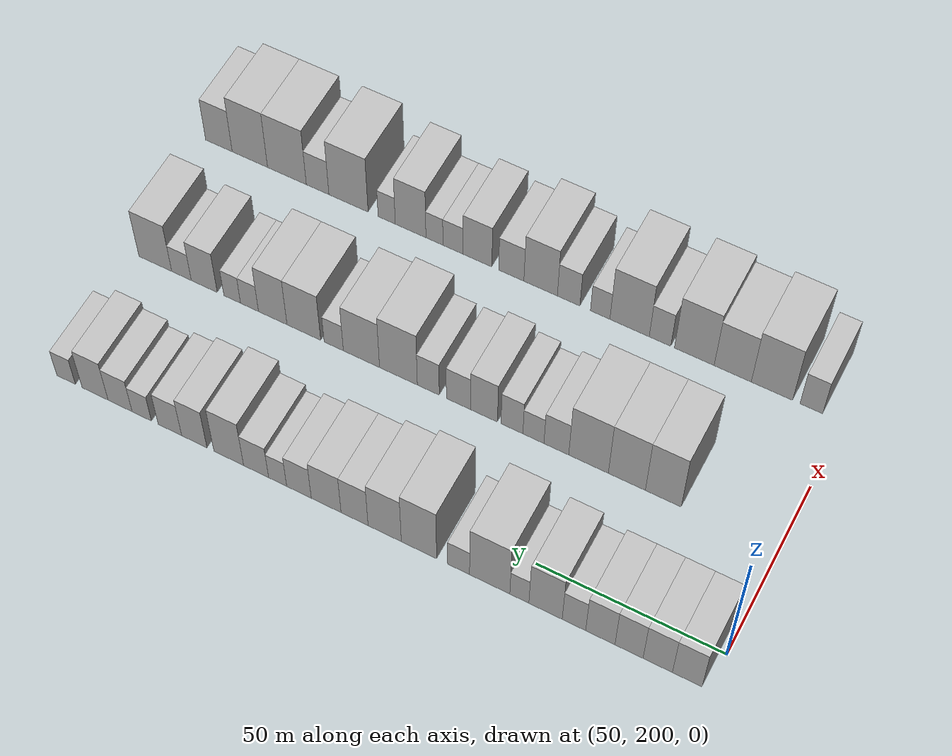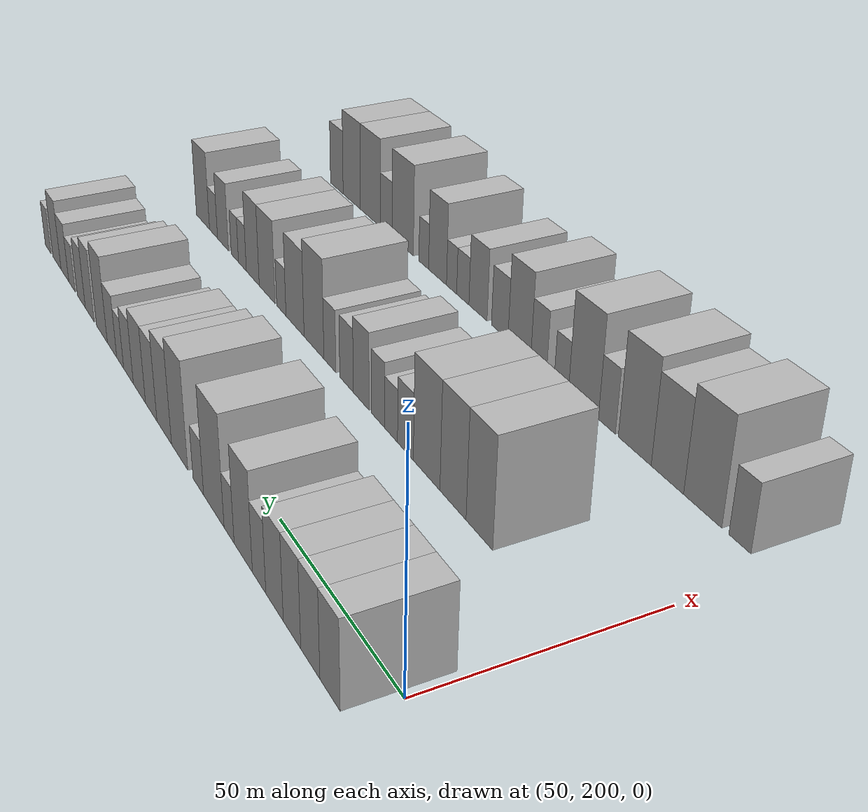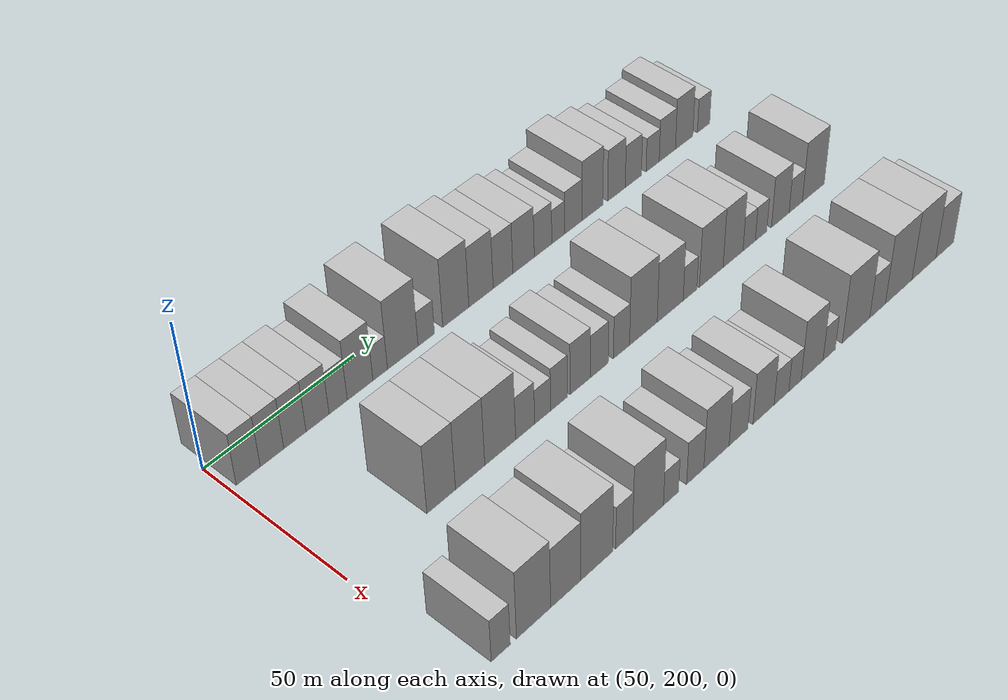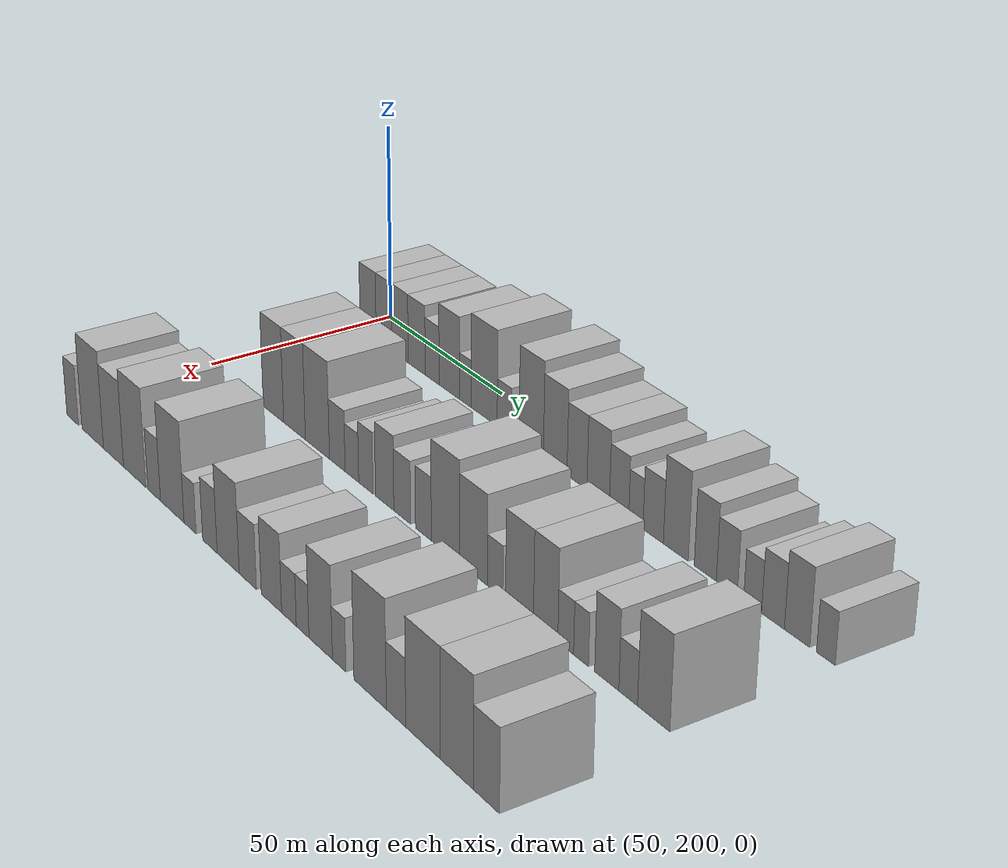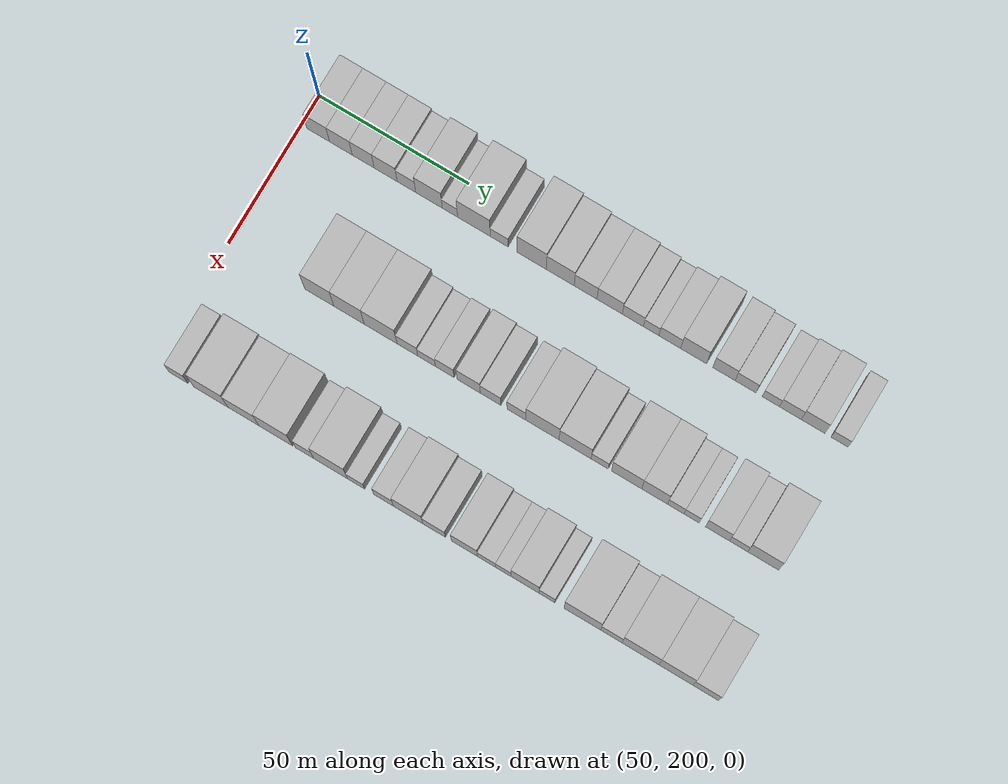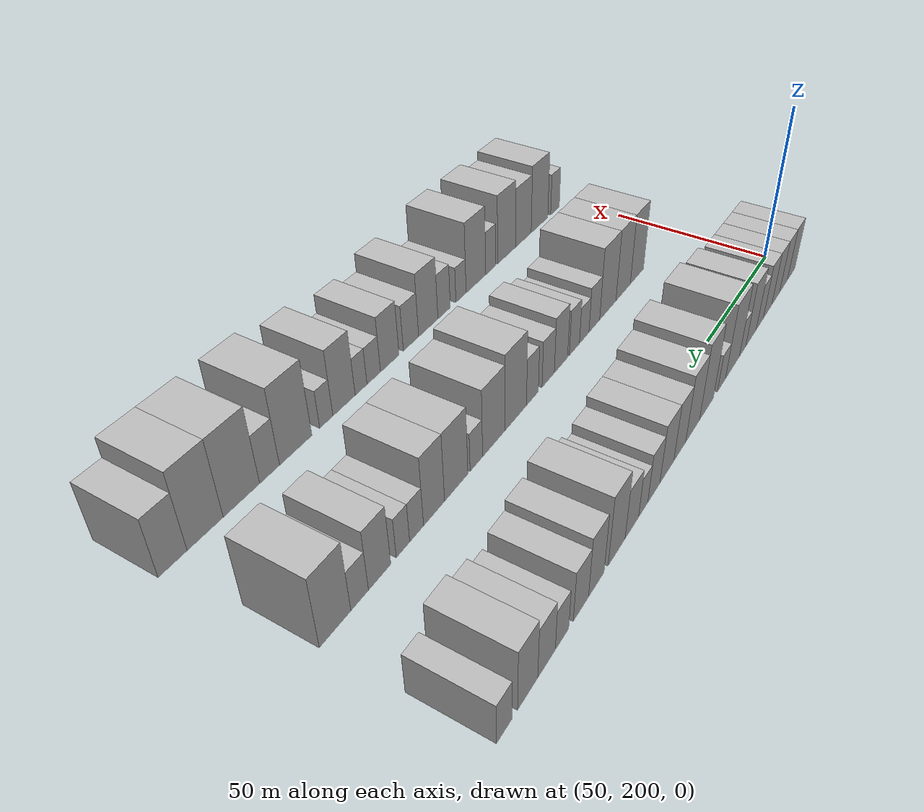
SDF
<sdf version="1.6">
 <world name="default">
  <model name="building_60">
   <static>1</static>
   <pose>50.0000 205.6578 0 0.000000 0.000000 0.000000</pose>
   <link name="link">
    <pose>0 0 9.00 0 0 0</pose>
    <collision name="collision"><geometry><box><size>20.0000 7.6293 18.0000</size></box></geometry></collision>
    <visual name="visual">
     <cast_shadows>0</cast_shadows>
     <geometry><box><size>20.0000 7.6293 18.0000</size></box></geometry>
     <material>
      <script>
       <uri>model://HANNAS_wall/materials/scripts</uri>
       <uri>model://HANNAS_wall/materials/textures</uri>
       <name>vrc/HANNAS_wall</name>
      </script>
     </material>
    </visual>
   </link>
  </model>
  <model name="building_61">
   <static>1</static>
   <pose>50.0000 213.2637 0 0.000000 0.000000 0.000000</pose>
   <link name="link">
    <pose>0 0 9.00 0 0 0</pose>
    <collision name="collision"><geometry><box><size>20.0000 7.5824 18.0000</size></box></geometry></collision>
    <visual name="visual">
     <cast_shadows>0</cast_shadows>
     <geometry><box><size>20.0000 7.5824 18.0000</size></box></geometry>
     <material>
      <script>
       <uri>model://HANNAS_wall/materials/scripts</uri>
       <uri>model://HANNAS_wall/materials/textures</uri>
       <name>vrc/HANNAS_wall</name>
      </script>
     </material>
    </visual>
   </link>
  </model>
  <model name="building_62">
   <static>1</static>
   <pose>50.0000 220.7071 0 0.000000 0.000000 0.000000</pose>
   <link name="link">
    <pose>0 0 9.00 0 0 0</pose>
    <collision name="collision"><geometry><box><size>20.0000 7.3046 18.0000</size></box></geometry></collision>
    <visual name="visual">
     <cast_shadows>0</cast_shadows>
     <geometry><box><size>20.0000 7.3046 18.0000</size></box></geometry>
     <material>
      <script>
       <uri>model://HANNAS_wall/materials/scripts</uri>
       <uri>model://HANNAS_wall/materials/textures</uri>
       <name>vrc/HANNAS_wall</name>
      </script>
     </material>
    </visual>
   </link>
  </model>
  <model name="building_63">
   <static>1</static>
   <pose>50.0000 228.1940 0 0.000000 0.000000 0.000000</pose>
   <link name="link">
    <pose>0 0 9.00 0 0 0</pose>
    <collision name="collision"><geometry><box><size>20.0000 7.6691 18.0000</size></box></geometry></collision>
    <visual name="visual">
     <cast_shadows>0</cast_shadows>
     <geometry><box><size>20.0000 7.6691 18.0000</size></box></geometry>
     <material>
      <script>
       <uri>model://HANNAS_wall/materials/scripts</uri>
       <uri>model://HANNAS_wall/materials/textures</uri>
       <name>vrc/HANNAS_wall</name>
      </script>
     </material>
    </visual>
   </link>
  </model>
  <model name="building_64">
   <static>1</static>
   <pose>50.0000 235.1184 0 0.000000 0.000000 0.000000</pose>
   <link name="link">
    <pose>0 0 7.50 0 0 0</pose>
    <collision name="collision"><geometry><box><size>20.0000 6.1797 15.0000</size></box></geometry></collision>
    <visual name="visual">
     <cast_shadows>0</cast_shadows>
     <geometry><box><size>20.0000 6.1797 15.0000</size></box></geometry>
     <material>
      <script>
       <uri>model://HANNAS_wall/materials/scripts</uri>
       <uri>model://HANNAS_wall/materials/textures</uri>
       <name>vrc/HANNAS_wall</name>
      </script>
     </material>
    </visual>
   </link>
  </model>
  <model name="building_65">
   <static>1</static>
   <pose>50.0000 242.6231 0 0.000000 0.000000 0.000000</pose>
   <link name="link">
    <pose>0 0 10.50 0 0 0</pose>
    <collision name="collision"><geometry><box><size>20.0000 8.8297 21.0000</size></box></geometry></collision>
    <visual name="visual">
     <cast_shadows>0</cast_shadows>
     <geometry><box><size>20.0000 8.8297 21.0000</size></box></geometry>
     <material>
      <script>
       <uri>model://HANNAS_wall/materials/scripts</uri>
       <uri>model://HANNAS_wall/materials/textures</uri>
       <name>vrc/HANNAS_wall</name>
      </script>
     </material>
    </visual>
   </link>
  </model>
  <model name="building_66">
   <static>1</static>
   <pose>50.0000 249.5800 0 0.000000 0.000000 0.000000</pose>
   <link name="link">
    <pose>0 0 6.00 0 0 0</pose>
    <collision name="collision"><geometry><box><size>20.0000 5.0841 12.0000</size></box></geometry></collision>
    <visual name="visual">
     <cast_shadows>0</cast_shadows>
     <geometry><box><size>20.0000 5.0841 12.0000</size></box></geometry>
     <material>
      <script>
       <uri>model://HANNAS_wall/materials/scripts</uri>
       <uri>model://HANNAS_wall/materials/textures</uri>
       <name>vrc/HANNAS_wall</name>
      </script>
     </material>
    </visual>
   </link>
  </model>
  <model name="building_67">
   <static>1</static>
   <pose>50.0000 257.5417 0 0.000000 0.000000 0.000000</pose>
   <link name="link">
    <pose>0 0 12.00 0 0 0</pose>
    <collision name="collision"><geometry><box><size>20.0000 10.8393 24.0000</size></box></geometry></collision>
    <visual name="visual">
     <cast_shadows>0</cast_shadows>
     <geometry><box><size>20.0000 10.8393 24.0000</size></box></geometry>
     <material>
      <script>
       <uri>model://HANNAS_wall/materials/scripts</uri>
       <uri>model://HANNAS_wall/materials/textures</uri>
       <name>vrc/HANNAS_wall</name>
      </script>
     </material>
    </visual>
   </link>
  </model>
  <model name="building_68">
   <static>1</static>
   <pose>50.0000 265.9187 0 0.000000 0.000000 0.000000</pose>
   <link name="link">
    <pose>0 0 6.00 0 0 0</pose>
    <collision name="collision"><geometry><box><size>20.0000 5.9146 12.0000</size></box></geometry></collision>
    <visual name="visual">
     <cast_shadows>0</cast_shadows>
     <geometry><box><size>20.0000 5.9146 12.0000</size></box></geometry>
     <material>
      <script>
       <uri>model://HANNAS_wall/materials/scripts</uri>
       <uri>model://HANNAS_wall/materials/textures</uri>
       <name>vrc/HANNAS_wall</name>
      </script>
     </material>
    </visual>
   </link>
  </model>
  <model name="building_69">
   <static>1</static>
   <pose>50.0000 276.7083 0 0.000000 0.000000 0.000000</pose>
   <link name="link">
    <pose>0 0 12.00 0 0 0</pose>
    <collision name="collision"><geometry><box><size>20.0000 9.6645 24.0000</size></box></geometry></collision>
    <visual name="visual">
     <cast_shadows>0</cast_shadows>
     <geometry><box><size>20.0000 9.6645 24.0000</size></box></geometry>
     <material>
      <script>
       <uri>model://HANNAS_wall/materials/scripts</uri>
       <uri>model://HANNAS_wall/materials/textures</uri>
       <name>vrc/HANNAS_wall</name>
      </script>
     </material>
    </visual>
   </link>
  </model>
  <model name="building_70">
   <static>1</static>
   <pose>50.0000 286.1209 0 0.000000 0.000000 0.000000</pose>
   <link name="link">
    <pose>0 0 10.50 0 0 0</pose>
    <collision name="collision"><geometry><box><size>20.0000 9.1607 21.0000</size></box></geometry></collision>
    <visual name="visual">
     <cast_shadows>0</cast_shadows>
     <geometry><box><size>20.0000 9.1607 21.0000</size></box></geometry>
     <material>
      <script>
       <uri>model://HANNAS_wall/materials/scripts</uri>
       <uri>model://HANNAS_wall/materials/textures</uri>
       <name>vrc/HANNAS_wall</name>
      </script>
     </material>
    </visual>
   </link>
  </model>
  <model name="building_71">
   <static>1</static>
   <pose>50.0000 294.4574 0 0.000000 0.000000 0.000000</pose>
   <link name="link">
    <pose>0 0 9.00 0 0 0</pose>
    <collision name="collision"><geometry><box><size>20.0000 7.5122 18.0000</size></box></geometry></collision>
    <visual name="visual">
     <cast_shadows>0</cast_shadows>
     <geometry><box><size>20.0000 7.5122 18.0000</size></box></geometry>
     <material>
      <script>
       <uri>model://HANNAS_wall/materials/scripts</uri>
       <uri>model://HANNAS_wall/materials/textures</uri>
       <name>vrc/HANNAS_wall</name>
      </script>
     </material>
    </visual>
   </link>
  </model>
  <model name="building_72">
   <static>1</static>
   <pose>50.0000 302.3831 0 0.000000 0.000000 0.000000</pose>
   <link name="link">
    <pose>0 0 9.00 0 0 0</pose>
    <collision name="collision"><geometry><box><size>20.0000 8.3392 18.0000</size></box></geometry></collision>
    <visual name="visual">
     <cast_shadows>0</cast_shadows>
     <geometry><box><size>20.0000 8.3392 18.0000</size></box></geometry>
     <material>
      <script>
       <uri>model://HANNAS_wall/materials/scripts</uri>
       <uri>model://HANNAS_wall/materials/textures</uri>
       <name>vrc/HANNAS_wall</name>
      </script>
     </material>
    </visual>
   </link>
  </model>
  <model name="building_73">
   <static>1</static>
   <pose>50.0000 310.0276 0 0.000000 0.000000 0.000000</pose>
   <link name="link">
    <pose>0 0 7.50 0 0 0</pose>
    <collision name="collision"><geometry><box><size>20.0000 6.9498 15.0000</size></box></geometry></collision>
    <visual name="visual">
     <cast_shadows>0</cast_shadows>
     <geometry><box><size>20.0000 6.9498 15.0000</size></box></geometry>
     <material>
      <script>
       <uri>model://HANNAS_wall/materials/scripts</uri>
       <uri>model://HANNAS_wall/materials/textures</uri>
       <name>vrc/HANNAS_wall</name>
      </script>
     </material>
    </visual>
   </link>
  </model>
  <model name="building_74">
   <static>1</static>
   <pose>50.0000 316.0511 0 0.000000 0.000000 0.000000</pose>
   <link name="link">
    <pose>0 0 6.00 0 0 0</pose>
    <collision name="collision"><geometry><box><size>20.0000 5.0972 12.0000</size></box></geometry></collision>
    <visual name="visual">
     <cast_shadows>0</cast_shadows>
     <geometry><box><size>20.0000 5.0972 12.0000</size></box></geometry>
     <material>
      <script>
       <uri>model://HANNAS_wall/materials/scripts</uri>
       <uri>model://HANNAS_wall/materials/textures</uri>
       <name>vrc/HANNAS_wall</name>
      </script>
     </material>
    </visual>
   </link>
  </model>
  <model name="building_75">
   <static>1</static>
   <pose>50.0000 322.1657 0 0.000000 0.000000 0.000000</pose>
   <link name="link">
    <pose>0 0 7.50 0 0 0</pose>
    <collision name="collision"><geometry><box><size>20.0000 7.1319 15.0000</size></box></geometry></collision>
    <visual name="visual">
     <cast_shadows>0</cast_shadows>
     <geometry><box><size>20.0000 7.1319 15.0000</size></box></geometry>
     <material>
      <script>
       <uri>model://HANNAS_wall/materials/scripts</uri>
       <uri>model://HANNAS_wall/materials/textures</uri>
       <name>vrc/HANNAS_wall</name>
      </script>
     </material>
    </visual>
   </link>
  </model>
  <model name="building_76">
   <static>1</static>
   <pose>50.0000 329.9906 0 0.000000 0.000000 0.000000</pose>
   <link name="link">
    <pose>0 0 10.50 0 0 0</pose>
    <collision name="collision"><geometry><box><size>20.0000 8.5179 21.0000</size></box></geometry></collision>
    <visual name="visual">
     <cast_shadows>0</cast_shadows>
     <geometry><box><size>20.0000 8.5179 21.0000</size></box></geometry>
     <material>
      <script>
       <uri>model://HANNAS_wall/materials/scripts</uri>
       <uri>model://HANNAS_wall/materials/textures</uri>
       <name>vrc/HANNAS_wall</name>
      </script>
     </material>
    </visual>
   </link>
  </model>
  <model name="building_77">
   <static>1</static>
   <pose>50.0000 339.9101 0 0.000000 0.000000 0.000000</pose>
   <link name="link">
    <pose>0 0 9.00 0 0 0</pose>
    <collision name="collision"><geometry><box><size>20.0000 7.3211 18.0000</size></box></geometry></collision>
    <visual name="visual">
     <cast_shadows>0</cast_shadows>
     <geometry><box><size>20.0000 7.3211 18.0000</size></box></geometry>
     <material>
      <script>
       <uri>model://HANNAS_wall/materials/scripts</uri>
       <uri>model://HANNAS_wall/materials/textures</uri>
       <name>vrc/HANNAS_wall</name>
      </script>
     </material>
    </visual>
   </link>
  </model>
  <model name="building_78">
   <static>1</static>
   <pose>50.0000 346.9833 0 0.000000 0.000000 0.000000</pose>
   <link name="link">
    <pose>0 0 7.50 0 0 0</pose>
    <collision name="collision"><geometry><box><size>20.0000 6.8253 15.0000</size></box></geometry></collision>
    <visual name="visual">
     <cast_shadows>0</cast_shadows>
     <geometry><box><size>20.0000 6.8253 15.0000</size></box></geometry>
     <material>
      <script>
       <uri>model://HANNAS_wall/materials/scripts</uri>
       <uri>model://HANNAS_wall/materials/textures</uri>
       <name>vrc/HANNAS_wall</name>
      </script>
     </material>
    </visual>
   </link>
  </model>
  <model name="building_79">
   <static>1</static>
   <pose>50.0000 355.2303 0 0.000000 0.000000 0.000000</pose>
   <link name="link">
    <pose>0 0 6.00 0 0 0</pose>
    <collision name="collision"><geometry><box><size>20.0000 5.6688 12.0000</size></box></geometry></collision>
    <visual name="visual">
     <cast_shadows>0</cast_shadows>
     <geometry><box><size>20.0000 5.6688 12.0000</size></box></geometry>
     <material>
      <script>
       <uri>model://HANNAS_wall/materials/scripts</uri>
       <uri>model://HANNAS_wall/materials/textures</uri>
       <name>vrc/HANNAS_wall</name>
      </script>
     </material>
    </visual>
   </link>
  </model>
  <model name="building_80">
   <static>1</static>
   <pose>50.0000 361.6075 0 0.000000 0.000000 0.000000</pose>
   <link name="link">
    <pose>0 0 7.50 0 0 0</pose>
    <collision name="collision"><geometry><box><size>20.0000 7.0857 15.0000</size></box></geometry></collision>
    <visual name="visual">
     <cast_shadows>0</cast_shadows>
     <geometry><box><size>20.0000 7.0857 15.0000</size></box></geometry>
     <material>
      <script>
       <uri>model://HANNAS_wall/materials/scripts</uri>
       <uri>model://HANNAS_wall/materials/textures</uri>
       <name>vrc/HANNAS_wall</name>
      </script>
     </material>
    </visual>
   </link>
  </model>
  <model name="building_81">
   <static>1</static>
   <pose>50.0000 369.0041 0 0.000000 0.000000 0.000000</pose>
   <link name="link">
    <pose>0 0 9.00 0 0 0</pose>
    <collision name="collision"><geometry><box><size>20.0000 7.7073 18.0000</size></box></geometry></collision>
    <visual name="visual">
     <cast_shadows>0</cast_shadows>
     <geometry><box><size>20.0000 7.7073 18.0000</size></box></geometry>
     <material>
      <script>
       <uri>model://HANNAS_wall/materials/scripts</uri>
       <uri>model://HANNAS_wall/materials/textures</uri>
       <name>vrc/HANNAS_wall</name>
      </script>
     </material>
    </visual>
   </link>
  </model>
  <model name="building_82">
   <static>1</static>
   <pose>50.0000 377.6275 0 0.000000 0.000000 0.000000</pose>
   <link name="link">
    <pose>0 0 6.00 0 0 0</pose>
    <collision name="collision"><geometry><box><size>20.0000 5.5395 12.0000</size></box></geometry></collision>
    <visual name="visual">
     <cast_shadows>0</cast_shadows>
     <geometry><box><size>20.0000 5.5395 12.0000</size></box></geometry>
     <material>
      <script>
       <uri>model://HANNAS_wall/materials/scripts</uri>
       <uri>model://HANNAS_wall/materials/textures</uri>
       <name>vrc/HANNAS_wall</name>
      </script>
     </material>
    </visual>
   </link>
  </model>
  <model name="building_148">
   <static>1</static>
   <pose>90.0000 230.5258 0 0.000000 0.000000 0.000000</pose>
   <link name="link">
    <pose>0 0 12.00 0 0 0</pose>
    <collision name="collision"><geometry><box><size>20.0000 9.6534 24.0000</size></box></geometry></collision>
    <visual name="visual">
     <cast_shadows>0</cast_shadows>
     <geometry><box><size>20.0000 9.6534 24.0000</size></box></geometry>
     <material>
      <script>
       <uri>model://HANNAS_wall/materials/scripts</uri>
       <uri>model://HANNAS_wall/materials/textures</uri>
       <name>vrc/HANNAS_wall</name>
      </script>
     </material>
    </visual>
   </link>
  </model>
  <model name="building_149">
   <static>1</static>
   <pose>90.0000 240.3830 0 0.000000 0.000000 0.000000</pose>
   <link name="link">
    <pose>0 0 12.00 0 0 0</pose>
    <collision name="collision"><geometry><box><size>20.0000 10.0611 24.0000</size></box></geometry></collision>
    <visual name="visual">
     <cast_shadows>0</cast_shadows>
     <geometry><box><size>20.0000 10.0611 24.0000</size></box></geometry>
     <material>
      <script>
       <uri>model://HANNAS_wall/materials/scripts</uri>
       <uri>model://HANNAS_wall/materials/textures</uri>
       <name>vrc/HANNAS_wall</name>
      </script>
     </material>
    </visual>
   </link>
  </model>
  <model name="building_150">
   <static>1</static>
   <pose>90.0000 250.8503 0 0.000000 0.000000 0.000000</pose>
   <link name="link">
    <pose>0 0 12.00 0 0 0</pose>
    <collision name="collision"><geometry><box><size>20.0000 10.8734 24.0000</size></box></geometry></collision>
    <visual name="visual">
     <cast_shadows>0</cast_shadows>
     <geometry><box><size>20.0000 10.8734 24.0000</size></box></geometry>
     <material>
      <script>
       <uri>model://HANNAS_wall/materials/scripts</uri>
       <uri>model://HANNAS_wall/materials/textures</uri>
       <name>vrc/HANNAS_wall</name>
      </script>
     </material>
    </visual>
   </link>
  </model>
  <model name="building_151">
   <static>1</static>
   <pose>90.0000 259.7042 0 0.000000 0.000000 0.000000</pose>
   <link name="link">
    <pose>0 0 7.50 0 0 0</pose>
    <collision name="collision"><geometry><box><size>20.0000 6.8343 15.0000</size></box></geometry></collision>
    <visual name="visual">
     <cast_shadows>0</cast_shadows>
     <geometry><box><size>20.0000 6.8343 15.0000</size></box></geometry>
     <material>
      <script>
       <uri>model://HANNAS_wall/materials/scripts</uri>
       <uri>model://HANNAS_wall/materials/textures</uri>
       <name>vrc/HANNAS_wall</name>
      </script>
     </material>
    </visual>
   </link>
  </model>
  <model name="building_152">
   <static>1</static>
   <pose>90.0000 266.0496 0 0.000000 0.000000 0.000000</pose>
   <link name="link">
    <pose>0 0 6.00 0 0 0</pose>
    <collision name="collision"><geometry><box><size>20.0000 5.8566 12.0000</size></box></geometry></collision>
    <visual name="visual">
     <cast_shadows>0</cast_shadows>
     <geometry><box><size>20.0000 5.8566 12.0000</size></box></geometry>
     <material>
      <script>
       <uri>model://HANNAS_wall/materials/scripts</uri>
       <uri>model://HANNAS_wall/materials/textures</uri>
       <name>vrc/HANNAS_wall</name>
      </script>
     </material>
    </visual>
   </link>
  </model>
  <model name="building_153">
   <static>1</static>
   <pose>90.0000 272.0352 0 0.000000 0.000000 0.000000</pose>
   <link name="link">
    <pose>0 0 7.50 0 0 0</pose>
    <collision name="collision"><geometry><box><size>20.0000 6.1145 15.0000</size></box></geometry></collision>
    <visual name="visual">
     <cast_shadows>0</cast_shadows>
     <geometry><box><size>20.0000 6.1145 15.0000</size></box></geometry>
     <material>
      <script>
       <uri>model://HANNAS_wall/materials/scripts</uri>
       <uri>model://HANNAS_wall/materials/textures</uri>
       <name>vrc/HANNAS_wall</name>
      </script>
     </material>
    </visual>
   </link>
  </model>
  <model name="building_154">
   <static>1</static>
   <pose>90.0000 279.8929 0 0.000000 0.000000 0.000000</pose>
   <link name="link">
    <pose>0 0 9.00 0 0 0</pose>
    <collision name="collision"><geometry><box><size>20.0000 7.6010 18.0000</size></box></geometry></collision>
    <visual name="visual">
     <cast_shadows>0</cast_shadows>
     <geometry><box><size>20.0000 7.6010 18.0000</size></box></geometry>
     <material>
      <script>
       <uri>model://HANNAS_wall/materials/scripts</uri>
       <uri>model://HANNAS_wall/materials/textures</uri>
       <name>vrc/HANNAS_wall</name>
      </script>
     </material>
    </visual>
   </link>
  </model>
  <model name="building_155">
   <static>1</static>
   <pose>90.0000 287.0862 0 0.000000 0.000000 0.000000</pose>
   <link name="link">
    <pose>0 0 7.50 0 0 0</pose>
    <collision name="collision"><geometry><box><size>20.0000 6.7857 15.0000</size></box></geometry></collision>
    <visual name="visual">
     <cast_shadows>0</cast_shadows>
     <geometry><box><size>20.0000 6.7857 15.0000</size></box></geometry>
     <material>
      <script>
       <uri>model://HANNAS_wall/materials/scripts</uri>
       <uri>model://HANNAS_wall/materials/textures</uri>
       <name>vrc/HANNAS_wall</name>
      </script>
     </material>
    </visual>
   </link>
  </model>
  <model name="building_156">
   <static>1</static>
   <pose>90.0000 295.6072 0 0.000000 0.000000 0.000000</pose>
   <link name="link">
    <pose>0 0 7.50 0 0 0</pose>
    <collision name="collision"><geometry><box><size>20.0000 6.2564 15.0000</size></box></geometry></collision>
    <visual name="visual">
     <cast_shadows>0</cast_shadows>
     <geometry><box><size>20.0000 6.2564 15.0000</size></box></geometry>
     <material>
      <script>
       <uri>model://HANNAS_wall/materials/scripts</uri>
       <uri>model://HANNAS_wall/materials/textures</uri>
       <name>vrc/HANNAS_wall</name>
      </script>
     </material>
    </visual>
   </link>
  </model>
  <model name="building_157">
   <static>1</static>
   <pose>90.0000 304.1616 0 0.000000 0.000000 0.000000</pose>
   <link name="link">
    <pose>0 0 12.00 0 0 0</pose>
    <collision name="collision"><geometry><box><size>20.0000 10.8524 24.0000</size></box></geometry></collision>
    <visual name="visual">
     <cast_shadows>0</cast_shadows>
     <geometry><box><size>20.0000 10.8524 24.0000</size></box></geometry>
     <material>
      <script>
       <uri>model://HANNAS_wall/materials/scripts</uri>
       <uri>model://HANNAS_wall/materials/textures</uri>
       <name>vrc/HANNAS_wall</name>
      </script>
     </material>
    </visual>
   </link>
  </model>
  <model name="building_158">
   <static>1</static>
   <pose>90.0000 314.8287 0 0.000000 0.000000 0.000000</pose>
   <link name="link">
    <pose>0 0 10.50 0 0 0</pose>
    <collision name="collision"><geometry><box><size>20.0000 10.4818 21.0000</size></box></geometry></collision>
    <visual name="visual">
     <cast_shadows>0</cast_shadows>
     <geometry><box><size>20.0000 10.4818 21.0000</size></box></geometry>
     <material>
      <script>
       <uri>model://HANNAS_wall/materials/scripts</uri>
       <uri>model://HANNAS_wall/materials/textures</uri>
       <name>vrc/HANNAS_wall</name>
      </script>
     </material>
    </visual>
   </link>
  </model>
  <model name="building_159">
   <static>1</static>
   <pose>90.0000 322.8721 0 0.000000 0.000000 0.000000</pose>
   <link name="link">
    <pose>0 0 6.00 0 0 0</pose>
    <collision name="collision"><geometry><box><size>20.0000 5.6050 12.0000</size></box></geometry></collision>
    <visual name="visual">
     <cast_shadows>0</cast_shadows>
     <geometry><box><size>20.0000 5.6050 12.0000</size></box></geometry>
     <material>
      <script>
       <uri>model://HANNAS_wall/materials/scripts</uri>
       <uri>model://HANNAS_wall/materials/textures</uri>
       <name>vrc/HANNAS_wall</name>
      </script>
     </material>
    </visual>
   </link>
  </model>
  <model name="building_160">
   <static>1</static>
   <pose>90.0000 331.6373 0 0.000000 0.000000 0.000000</pose>
   <link name="link">
    <pose>0 0 10.50 0 0 0</pose>
    <collision name="collision"><geometry><box><size>20.0000 9.9254 21.0000</size></box></geometry></collision>
    <visual name="visual">
     <cast_shadows>0</cast_shadows>
     <geometry><box><size>20.0000 9.9254 21.0000</size></box></geometry>
     <material>
      <script>
       <uri>model://HANNAS_wall/materials/scripts</uri>
       <uri>model://HANNAS_wall/materials/textures</uri>
       <name>vrc/HANNAS_wall</name>
      </script>
     </material>
    </visual>
   </link>
  </model>
  <model name="building_161">
   <static>1</static>
   <pose>90.0000 340.8213 0 0.000000 0.000000 0.000000</pose>
   <link name="link">
    <pose>0 0 10.50 0 0 0</pose>
    <collision name="collision"><geometry><box><size>20.0000 8.4428 21.0000</size></box></geometry></collision>
    <visual name="visual">
     <cast_shadows>0</cast_shadows>
     <geometry><box><size>20.0000 8.4428 21.0000</size></box></geometry>
     <material>
      <script>
       <uri>model://HANNAS_wall/materials/scripts</uri>
       <uri>model://HANNAS_wall/materials/textures</uri>
       <name>vrc/HANNAS_wall</name>
      </script>
     </material>
    </visual>
   </link>
  </model>
  <model name="building_162">
   <static>1</static>
   <pose>90.0000 347.7134 0 0.000000 0.000000 0.000000</pose>
   <link name="link">
    <pose>0 0 6.00 0 0 0</pose>
    <collision name="collision"><geometry><box><size>20.0000 5.3413 12.0000</size></box></geometry></collision>
    <visual name="visual">
     <cast_shadows>0</cast_shadows>
     <geometry><box><size>20.0000 5.3413 12.0000</size></box></geometry>
     <material>
      <script>
       <uri>model://HANNAS_wall/materials/scripts</uri>
       <uri>model://HANNAS_wall/materials/textures</uri>
       <name>vrc/HANNAS_wall</name>
      </script>
     </material>
    </visual>
   </link>
  </model>
  <model name="building_163">
   <static>1</static>
   <pose>90.0000 352.8752 0 0.000000 0.000000 0.000000</pose>
   <link name="link">
    <pose>0 0 6.00 0 0 0</pose>
    <collision name="collision"><geometry><box><size>20.0000 4.9824 12.0000</size></box></geometry></collision>
    <visual name="visual">
     <cast_shadows>0</cast_shadows>
     <geometry><box><size>20.0000 4.9824 12.0000</size></box></geometry>
     <material>
      <script>
       <uri>model://HANNAS_wall/materials/scripts</uri>
       <uri>model://HANNAS_wall/materials/textures</uri>
       <name>vrc/HANNAS_wall</name>
      </script>
     </material>
    </visual>
   </link>
  </model>
  <model name="building_164">
   <static>1</static>
   <pose>90.0000 361.2818 0 0.000000 0.000000 0.000000</pose>
   <link name="link">
    <pose>0 0 9.00 0 0 0</pose>
    <collision name="collision"><geometry><box><size>20.0000 7.8307 18.0000</size></box></geometry></collision>
    <visual name="visual">
     <cast_shadows>0</cast_shadows>
     <geometry><box><size>20.0000 7.8307 18.0000</size></box></geometry>
     <material>
      <script>
       <uri>model://HANNAS_wall/materials/scripts</uri>
       <uri>model://HANNAS_wall/materials/textures</uri>
       <name>vrc/HANNAS_wall</name>
      </script>
     </material>
    </visual>
   </link>
  </model>
  <model name="building_165">
   <static>1</static>
   <pose>90.0000 368.1566 0 0.000000 0.000000 0.000000</pose>
   <link name="link">
    <pose>0 0 6.00 0 0 0</pose>
    <collision name="collision"><geometry><box><size>20.0000 5.9189 12.0000</size></box></geometry></collision>
    <visual name="visual">
     <cast_shadows>0</cast_shadows>
     <geometry><box><size>20.0000 5.9189 12.0000</size></box></geometry>
     <material>
      <script>
       <uri>model://HANNAS_wall/materials/scripts</uri>
       <uri>model://HANNAS_wall/materials/textures</uri>
       <name>vrc/HANNAS_wall</name>
      </script>
     </material>
    </visual>
   </link>
  </model>
  <model name="building_166">
   <static>1</static>
   <pose>90.0000 376.1153 0 0.000000 0.000000 0.000000</pose>
   <link name="link">
    <pose>0 0 10.50 0 0 0</pose>
    <collision name="collision"><geometry><box><size>20.0000 9.9985 21.0000</size></box></geometry></collision>
    <visual name="visual">
     <cast_shadows>0</cast_shadows>
     <geometry><box><size>20.0000 9.9985 21.0000</size></box></geometry>
     <material>
      <script>
       <uri>model://HANNAS_wall/materials/scripts</uri>
       <uri>model://HANNAS_wall/materials/textures</uri>
       <name>vrc/HANNAS_wall</name>
      </script>
     </material>
    </visual>
   </link>
  </model>
  <model name="building_229">
   <static>1</static>
   <pose>130.0000 208.4396 0 0.000000 0.000000 0.000000</pose>
   <link name="link">
    <pose>0 0 7.50 0 0 0</pose>
    <collision name="collision"><geometry><box><size>20.0000 6.1475 15.0000</size></box></geometry></collision>
    <visual name="visual">
     <cast_shadows>0</cast_shadows>
     <geometry><box><size>20.0000 6.1475 15.0000</size></box></geometry>
     <material>
      <script>
       <uri>model://HANNAS_wall/materials/scripts</uri>
       <uri>model://HANNAS_wall/materials/textures</uri>
       <name>vrc/HANNAS_wall</name>
      </script>
     </material>
    </visual>
   </link>
  </model>
  <model name="building_230">
   <static>1</static>
   <pose>130.0000 219.1652 0 0.000000 0.000000 0.000000</pose>
   <link name="link">
    <pose>0 0 12.00 0 0 0</pose>
    <collision name="collision"><geometry><box><size>20.0000 11.3038 24.0000</size></box></geometry></collision>
    <visual name="visual">
     <cast_shadows>0</cast_shadows>
     <geometry><box><size>20.0000 11.3038 24.0000</size></box></geometry>
     <material>
      <script>
       <uri>model://HANNAS_wall/materials/scripts</uri>
       <uri>model://HANNAS_wall/materials/textures</uri>
       <name>vrc/HANNAS_wall</name>
      </script>
     </material>
    </visual>
   </link>
  </model>
  <model name="building_231">
   <static>1</static>
   <pose>130.0000 229.9390 0 0.000000 0.000000 0.000000</pose>
   <link name="link">
    <pose>0 0 10.50 0 0 0</pose>
    <collision name="collision"><geometry><box><size>20.0000 10.2439 21.0000</size></box></geometry></collision>
    <visual name="visual">
     <cast_shadows>0</cast_shadows>
     <geometry><box><size>20.0000 10.2439 21.0000</size></box></geometry>
     <material>
      <script>
       <uri>model://HANNAS_wall/materials/scripts</uri>
       <uri>model://HANNAS_wall/materials/textures</uri>
       <name>vrc/HANNAS_wall</name>
      </script>
     </material>
    </visual>
   </link>
  </model>
  <model name="building_232">
   <static>1</static>
   <pose>130.0000 240.5906 0 0.000000 0.000000 0.000000</pose>
   <link name="link">
    <pose>0 0 12.00 0 0 0</pose>
    <collision name="collision"><geometry><box><size>20.0000 11.0592 24.0000</size></box></geometry></collision>
    <visual name="visual">
     <cast_shadows>0</cast_shadows>
     <geometry><box><size>20.0000 11.0592 24.0000</size></box></geometry>
     <material>
      <script>
       <uri>model://HANNAS_wall/materials/scripts</uri>
       <uri>model://HANNAS_wall/materials/textures</uri>
       <name>vrc/HANNAS_wall</name>
      </script>
     </material>
    </visual>
   </link>
  </model>
  <model name="building_233">
   <static>1</static>
   <pose>130.0000 250.1580 0 0.000000 0.000000 0.000000</pose>
   <link name="link">
    <pose>0 0 7.50 0 0 0</pose>
    <collision name="collision"><geometry><box><size>20.0000 6.0756 15.0000</size></box></geometry></collision>
    <visual name="visual">
     <cast_shadows>0</cast_shadows>
     <geometry><box><size>20.0000 6.0756 15.0000</size></box></geometry>
     <material>
      <script>
       <uri>model://HANNAS_wall/materials/scripts</uri>
       <uri>model://HANNAS_wall/materials/textures</uri>
       <name>vrc/HANNAS_wall</name>
      </script>
     </material>
    </visual>
   </link>
  </model>
  <model name="building_234">
   <static>1</static>
   <pose>130.0000 258.7547 0 0.000000 0.000000 0.000000</pose>
   <link name="link">
    <pose>0 0 12.00 0 0 0</pose>
    <collision name="collision"><geometry><box><size>20.0000 11.1179 24.0000</size></box></geometry></collision>
    <visual name="visual">
     <cast_shadows>0</cast_shadows>
     <geometry><box><size>20.0000 11.1179 24.0000</size></box></geometry>
     <material>
      <script>
       <uri>model://HANNAS_wall/materials/scripts</uri>
       <uri>model://HANNAS_wall/materials/textures</uri>
       <name>vrc/HANNAS_wall</name>
      </script>
     </material>
    </visual>
   </link>
  </model>
  <model name="building_235">
   <static>1</static>
   <pose>130.0000 267.0883 0 0.000000 0.000000 0.000000</pose>
   <link name="link">
    <pose>0 0 6.00 0 0 0</pose>
    <collision name="collision"><geometry><box><size>20.0000 5.5494 12.0000</size></box></geometry></collision>
    <visual name="visual">
     <cast_shadows>0</cast_shadows>
     <geometry><box><size>20.0000 5.5494 12.0000</size></box></geometry>
     <material>
      <script>
       <uri>model://HANNAS_wall/materials/scripts</uri>
       <uri>model://HANNAS_wall/materials/textures</uri>
       <name>vrc/HANNAS_wall</name>
      </script>
     </material>
    </visual>
   </link>
  </model>
  <model name="building_236">
   <static>1</static>
   <pose>130.0000 276.1069 0 0.000000 0.000000 0.000000</pose>
   <link name="link">
    <pose>0 0 7.50 0 0 0</pose>
    <collision name="collision"><geometry><box><size>20.0000 6.4877 15.0000</size></box></geometry></collision>
    <visual name="visual">
     <cast_shadows>0</cast_shadows>
     <geometry><box><size>20.0000 6.4877 15.0000</size></box></geometry>
     <material>
      <script>
       <uri>model://HANNAS_wall/materials/scripts</uri>
       <uri>model://HANNAS_wall/materials/textures</uri>
       <name>vrc/HANNAS_wall</name>
      </script>
     </material>
    </visual>
   </link>
  </model>
  <model name="building_237">
   <static>1</static>
   <pose>130.0000 284.1865 0 0.000000 0.000000 0.000000</pose>
   <link name="link">
    <pose>0 0 10.50 0 0 0</pose>
    <collision name="collision"><geometry><box><size>20.0000 9.6714 21.0000</size></box></geometry></collision>
    <visual name="visual">
     <cast_shadows>0</cast_shadows>
     <geometry><box><size>20.0000 9.6714 21.0000</size></box></geometry>
     <material>
      <script>
       <uri>model://HANNAS_wall/materials/scripts</uri>
       <uri>model://HANNAS_wall/materials/textures</uri>
       <name>vrc/HANNAS_wall</name>
      </script>
     </material>
    </visual>
   </link>
  </model>
  <model name="building_238">
   <static>1</static>
   <pose>130.0000 292.6950 0 0.000000 0.000000 0.000000</pose>
   <link name="link">
    <pose>0 0 7.50 0 0 0</pose>
    <collision name="collision"><geometry><box><size>20.0000 7.3456 15.0000</size></box></geometry></collision>
    <visual name="visual">
     <cast_shadows>0</cast_shadows>
     <geometry><box><size>20.0000 7.3456 15.0000</size></box></geometry>
     <material>
      <script>
       <uri>model://HANNAS_wall/materials/scripts</uri>
       <uri>model://HANNAS_wall/materials/textures</uri>
       <name>vrc/HANNAS_wall</name>
      </script>
     </material>
    </visual>
   </link>
  </model>
  <model name="building_239">
   <static>1</static>
   <pose>130.0000 302.5908 0 0.000000 0.000000 0.000000</pose>
   <link name="link">
    <pose>0 0 9.00 0 0 0</pose>
    <collision name="collision"><geometry><box><size>20.0000 8.4461 18.0000</size></box></geometry></collision>
    <visual name="visual">
     <cast_shadows>0</cast_shadows>
     <geometry><box><size>20.0000 8.4461 18.0000</size></box></geometry>
     <material>
      <script>
       <uri>model://HANNAS_wall/materials/scripts</uri>
       <uri>model://HANNAS_wall/materials/textures</uri>
       <name>vrc/HANNAS_wall</name>
      </script>
     </material>
    </visual>
   </link>
  </model>
  <model name="building_240">
   <static>1</static>
   <pose>130.0000 309.7765 0 0.000000 0.000000 0.000000</pose>
   <link name="link">
    <pose>0 0 6.00 0 0 0</pose>
    <collision name="collision"><geometry><box><size>20.0000 5.9254 12.0000</size></box></geometry></collision>
    <visual name="visual">
     <cast_shadows>0</cast_shadows>
     <geometry><box><size>20.0000 5.9254 12.0000</size></box></geometry>
     <material>
      <script>
       <uri>model://HANNAS_wall/materials/scripts</uri>
       <uri>model://HANNAS_wall/materials/textures</uri>
       <name>vrc/HANNAS_wall</name>
      </script>
     </material>
    </visual>
   </link>
  </model>
  <model name="building_241">
   <static>1</static>
   <pose>130.0000 315.2552 0 0.000000 0.000000 0.000000</pose>
   <link name="link">
    <pose>0 0 6.00 0 0 0</pose>
    <collision name="collision"><geometry><box><size>20.0000 5.0320 12.0000</size></box></geometry></collision>
    <visual name="visual">
     <cast_shadows>0</cast_shadows>
     <geometry><box><size>20.0000 5.0320 12.0000</size></box></geometry>
     <material>
      <script>
       <uri>model://HANNAS_wall/materials/scripts</uri>
       <uri>model://HANNAS_wall/materials/textures</uri>
       <name>vrc/HANNAS_wall</name>
      </script>
     </material>
    </visual>
   </link>
  </model>
  <model name="building_242">
   <static>1</static>
   <pose>130.0000 322.3398 0 0.000000 0.000000 0.000000</pose>
   <link name="link">
    <pose>0 0 10.50 0 0 0</pose>
    <collision name="collision"><geometry><box><size>20.0000 9.1371 21.0000</size></box></geometry></collision>
    <visual name="visual">
     <cast_shadows>0</cast_shadows>
     <geometry><box><size>20.0000 9.1371 21.0000</size></box></geometry>
     <material>
      <script>
       <uri>model://HANNAS_wall/materials/scripts</uri>
       <uri>model://HANNAS_wall/materials/textures</uri>
       <name>vrc/HANNAS_wall</name>
      </script>
     </material>
    </visual>
   </link>
  </model>
  <model name="building_243">
   <static>1</static>
   <pose>130.0000 329.4875 0 0.000000 0.000000 0.000000</pose>
   <link name="link">
    <pose>0 0 6.00 0 0 0</pose>
    <collision name="collision"><geometry><box><size>20.0000 5.1582 12.0000</size></box></geometry></collision>
    <visual name="visual">
     <cast_shadows>0</cast_shadows>
     <geometry><box><size>20.0000 5.1582 12.0000</size></box></geometry>
     <material>
      <script>
       <uri>model://HANNAS_wall/materials/scripts</uri>
       <uri>model://HANNAS_wall/materials/textures</uri>
       <name>vrc/HANNAS_wall</name>
      </script>
     </material>
    </visual>
   </link>
  </model>
  <model name="building_244">
   <static>1</static>
   <pose>130.0000 341.0060 0 0.000000 0.000000 0.000000</pose>
   <link name="link">
    <pose>0 0 12.00 0 0 0</pose>
    <collision name="collision"><geometry><box><size>20.0000 11.8788 24.0000</size></box></geometry></collision>
    <visual name="visual">
     <cast_shadows>0</cast_shadows>
     <geometry><box><size>20.0000 11.8788 24.0000</size></box></geometry>
     <material>
      <script>
       <uri>model://HANNAS_wall/materials/scripts</uri>
       <uri>model://HANNAS_wall/materials/textures</uri>
       <name>vrc/HANNAS_wall</name>
      </script>
     </material>
    </visual>
   </link>
  </model>
  <model name="building_245">
   <static>1</static>
   <pose>130.0000 350.4014 0 0.000000 0.000000 0.000000</pose>
   <link name="link">
    <pose>0 0 7.50 0 0 0</pose>
    <collision name="collision"><geometry><box><size>20.0000 6.9120 15.0000</size></box></geometry></collision>
    <visual name="visual">
     <cast_shadows>0</cast_shadows>
     <geometry><box><size>20.0000 6.9120 15.0000</size></box></geometry>
     <material>
      <script>
       <uri>model://HANNAS_wall/materials/scripts</uri>
       <uri>model://HANNAS_wall/materials/textures</uri>
       <name>vrc/HANNAS_wall</name>
      </script>
     </material>
    </visual>
   </link>
  </model>
  <model name="building_246">
   <static>1</static>
   <pose>130.0000 359.8179 0 0.000000 0.000000 0.000000</pose>
   <link name="link">
    <pose>0 0 12.00 0 0 0</pose>
    <collision name="collision"><geometry><box><size>20.0000 11.9211 24.0000</size></box></geometry></collision>
    <visual name="visual">
     <cast_shadows>0</cast_shadows>
     <geometry><box><size>20.0000 11.9211 24.0000</size></box></geometry>
     <material>
      <script>
       <uri>model://HANNAS_wall/materials/scripts</uri>
       <uri>model://HANNAS_wall/materials/textures</uri>
       <name>vrc/HANNAS_wall</name>
      </script>
     </material>
    </visual>
   </link>
  </model>
  <model name="building_247">
   <static>1</static>
   <pose>130.0000 371.2685 0 0.000000 0.000000 0.000000</pose>
   <link name="link">
    <pose>0 0 12.00 0 0 0</pose>
    <collision name="collision"><geometry><box><size>20.0000 10.9801 24.0000</size></box></geometry></collision>
    <visual name="visual">
     <cast_shadows>0</cast_shadows>
     <geometry><box><size>20.0000 10.9801 24.0000</size></box></geometry>
     <material>
      <script>
       <uri>model://HANNAS_wall/materials/scripts</uri>
       <uri>model://HANNAS_wall/materials/textures</uri>
       <name>vrc/HANNAS_wall</name>
      </script>
     </material>
    </visual>
   </link>
  </model>
  <model name="building_248">
   <static>1</static>
   <pose>130.0000 380.9100 0 0.000000 0.000000 0.000000</pose>
   <link name="link">
    <pose>0 0 9.00 0 0 0</pose>
    <collision name="collision"><geometry><box><size>20.0000 8.3029 18.0000</size></box></geometry></collision>
    <visual name="visual">
     <cast_shadows>0</cast_shadows>
     <geometry><box><size>20.0000 8.3029 18.0000</size></box></geometry>
     <material>
      <script>
       <uri>model://HANNAS_wall/materials/scripts</uri>
       <uri>model://HANNAS_wall/materials/textures</uri>
       <name>vrc/HANNAS_wall</name>
      </script>
     </material>
    </visual>
   </link>
  </model>
 </world>
</sdf>
